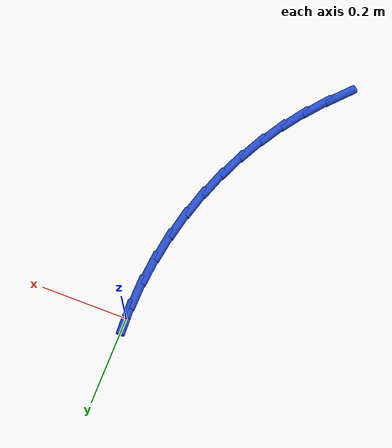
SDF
<sdf version="1.6">
 <world name="default">
  <model name="ground_plane">
   <static>1</static>
   <link name="link">
    <collision name="collision">
     <geometry><plane><normal>0 0 1</normal><size>100 100</size></plane></geometry>
     <surface><friction><ode><mu>100</mu><mu2>50</mu2></ode></friction></surface>
    </collision>
    <visual name="visual">
     <cast_shadows>0</cast_shadows>
     <geometry><plane><normal>0 0 1</normal><size>100 100</size></plane></geometry>
     <material>
      <script><uri>file://media/materials/scripts/gazebo.material</uri><name>Gazebo/WhiteGlow</name></script>
     </material>
    </visual>
   </link>
  </model>
  <model name="line">
   <link name="link_0">
    <pose>0.0 -4.163336342344337e-17 0.01 0 1.57 -1.5236718536725264</pose>
    <collision name="collision">
     <geometry><cylinder><radius>0.01</radius><length>0.08</length></cylinder></geometry>
    </collision>
    <visual name="visual">
     <material>
      <script><name>Gazebo/Blue</name><uri>file://media/materials/scripts/gazebo.material</uri></script>
     </material>
     <geometry><cylinder><radius>0.01</radius><length>0.08</length></cylinder></geometry>
    </visual>
   </link>
   <link name="link_98">
    <pose>-0.2630045829548915 -0.669357625685275 0.01 0 1.57 0.8337128065966456</pose>
    <collision name="collision">
     <geometry><cylinder><radius>0.01</radius><length>0.08</length></cylinder></geometry>
    </collision>
    <visual name="visual">
     <material>
      <script><name>Gazebo/Blue</name><uri>file://media/materials/scripts/gazebo.material</uri></script>
     </material>
     <geometry><cylinder><radius>0.01</radius><length>0.08</length></cylinder></geometry>
    </visual>
   </link>
   <link name="link_99">
    <pose>-0.22228627913853993 -0.6245016090471149 0.01 0 1.57 0.8975265364738417</pose>
    <collision name="collision">
     <geometry><cylinder><radius>0.01</radius><length>0.08</length></cylinder></geometry>
    </collision>
    <visual name="visual">
     <material>
      <script><name>Gazebo/Blue</name><uri>file://media/materials/scripts/gazebo.material</uri></script>
     </material>
     <geometry><cylinder><radius>0.01</radius><length>0.08</length></cylinder></geometry>
    </visual>
   </link>
   <link name="link_100">
    <pose>-0.1845004469548674 -0.5771266102411353 0.01 0 1.57 0.9654436463303256</pose>
    <collision name="collision">
     <geometry><cylinder><radius>0.01</radius><length>0.08</length></cylinder></geometry>
    </collision>
    <visual name="visual">
     <material>
      <script><name>Gazebo/Blue</name><uri>file://media/materials/scripts/gazebo.material</uri></script>
     </material>
     <geometry><cylinder><radius>0.01</radius><length>0.08</length></cylinder></geometry>
    </visual>
   </link>
   <link name="link_101">
    <pose>-0.14988187717941 -0.5271014908575103 0.01 0 1.57 1.0349184128986435</pose>
    <collision name="collision">
     <geometry><cylinder><radius>0.01</radius><length>0.08</length></cylinder></geometry>
    </collision>
    <visual name="visual">
     <material>
      <script><name>Gazebo/Blue</name><uri>file://media/materials/scripts/gazebo.material</uri></script>
     </material>
     <geometry><cylinder><radius>0.01</radius><length>0.08</length></cylinder></geometry>
    </visual>
   </link>
   <link name="link_102">
    <pose>-0.11861707289933565 -0.4744529752300857 0.01 0 1.57 1.1022278636660634</pose>
    <collision name="collision">
     <geometry><cylinder><radius>0.01</radius><length>0.08</length></cylinder></geometry>
    </collision>
    <visual name="visual">
     <material>
      <script><name>Gazebo/Blue</name><uri>file://media/materials/scripts/gazebo.material</uri></script>
     </material>
     <geometry><cylinder><radius>0.01</radius><length>0.08</length></cylinder></geometry>
    </visual>
   </link>
   <link name="link_103">
    <pose>-0.09080261744281626 -0.41950175454732724 0.01 0 1.57 1.1675221606341295</pose>
    <collision name="collision">
     <geometry><cylinder><radius>0.01</radius><length>0.08</length></cylinder></geometry>
    </collision>
    <visual name="visual">
     <material>
      <script><name>Gazebo/Blue</name><uri>file://media/materials/scripts/gazebo.material</uri></script>
     </material>
     <geometry><cylinder><radius>0.01</radius><length>0.08</length></cylinder></geometry>
    </visual>
   </link>
   <link name="link_104">
    <pose>-0.06652528228239037 -0.3626005970447257 0.01 0 1.57 1.2313976841175516</pose>
    <collision name="collision">
     <geometry><cylinder><radius>0.01</radius><length>0.08</length></cylinder></geometry>
    </collision>
    <visual name="visual">
     <material>
      <script><name>Gazebo/Blue</name><uri>file://media/materials/scripts/gazebo.material</uri></script>
     </material>
     <geometry><cylinder><radius>0.01</radius><length>0.08</length></cylinder></geometry>
    </visual>
   </link>
   <link name="link_105">
    <pose>-0.045871838890597726 -0.30410227095777476 0.01 0 1.57 1.2944564571612764</pose>
    <collision name="collision">
     <geometry><cylinder><radius>0.01</radius><length>0.08</length></cylinder></geometry>
    </collision>
    <visual name="visual">
     <material>
      <script><name>Gazebo/Blue</name><uri>file://media/materials/scripts/gazebo.material</uri></script>
     </material>
     <geometry><cylinder><radius>0.01</radius><length>0.08</length></cylinder></geometry>
    </visual>
   </link>
   <link name="link_106">
    <pose>-0.028929058739977045 -0.2443595445219656 0.01 0 1.57 1.3573032238473497</pose>
    <collision name="collision">
     <geometry><cylinder><radius>0.01</radius><length>0.08</length></cylinder></geometry>
    </collision>
    <visual name="visual">
     <material>
      <script><name>Gazebo/Blue</name><uri>file://media/materials/scripts/gazebo.material</uri></script>
     </material>
     <geometry><cylinder><radius>0.01</radius><length>0.08</length></cylinder></geometry>
    </visual>
   </link>
   <link name="link_107">
    <pose>-0.015783713303067885 -0.18372518597279183 0.01 0 1.57 1.420545244652322</pose>
    <collision name="collision">
     <geometry><cylinder><radius>0.01</radius><length>0.08</length></cylinder></geometry>
    </collision>
    <visual name="visual">
     <material>
      <script><name>Gazebo/Blue</name><uri>file://media/materials/scripts/gazebo.material</uri></script>
     </material>
     <geometry><cylinder><radius>0.01</radius><length>0.08</length></cylinder></geometry>
    </visual>
   </link>
   <link name="link_108">
    <pose>-0.006522574052409106 -0.12255196354574412 0.01 0 1.57 1.4847928921367302</pose>
    <collision name="collision">
     <geometry><cylinder><radius>0.01</radius><length>0.08</length></cylinder></geometry>
    </collision>
    <visual name="visual">
     <material>
      <script><name>Gazebo/Blue</name><uri>file://media/materials/scripts/gazebo.material</uri></script>
     </material>
     <geometry><cylinder><radius>0.01</radius><length>0.08</length></cylinder></geometry>
    </visual>
   </link>
   <link name="link_109">
    <pose>-0.0012324124605401273 -0.06119264547631659 0.01 0 1.57 1.5506591703886212</pose>
    <collision name="collision">
     <geometry><cylinder><radius>0.01</radius><length>0.08</length></cylinder></geometry>
    </collision>
    <visual name="visual">
     <material>
      <script><name>Gazebo/Blue</name><uri>file://media/materials/scripts/gazebo.material</uri></script>
     </material>
     <geometry><cylinder><radius>0.01</radius><length>0.08</length></cylinder></geometry>
    </visual>
   </link>
   <link name="link_110">
    <pose>1.0408340855860843e-17 1.1102230246251565e-16 0.01 0 1.57 -1.5228365220862734</pose>
    <collision name="collision">
     <geometry><cylinder><radius>0.01</radius><length>0.08</length></cylinder></geometry>
    </collision>
    <visual name="visual">
     <material>
      <script><name>Gazebo/Blue</name><uri>file://media/materials/scripts/gazebo.material</uri></script>
     </material>
     <geometry><cylinder><radius>0.01</radius><length>0.08</length></cylinder></geometry>
    </visual>
   </link>
  </model>
 </world>
</sdf>
